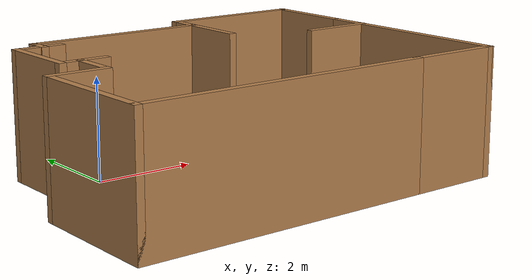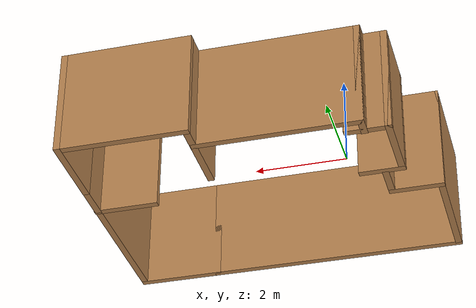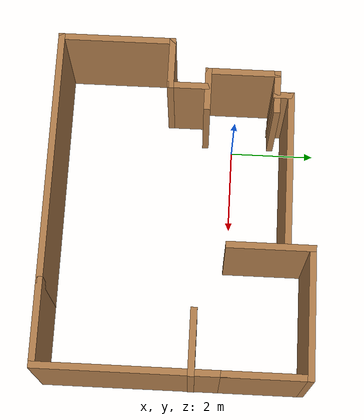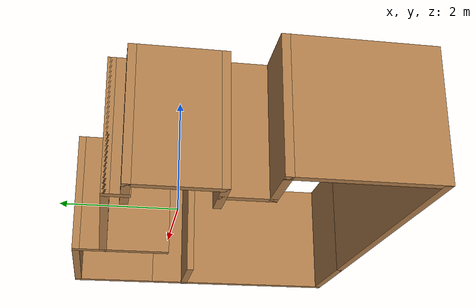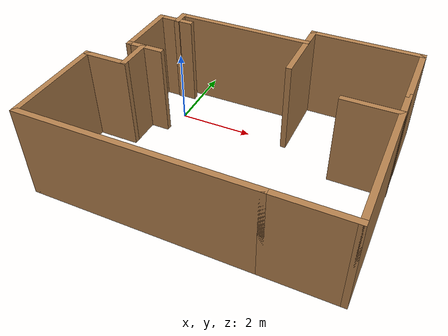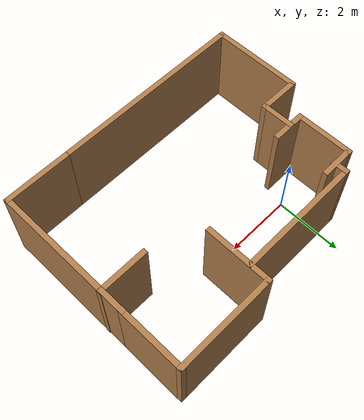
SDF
<?xml version='1.0'?>
<sdf version='1.7'>
  <model name='map'>
    <pose>2.04989 -1.15327 0 0 -0 0</pose>
    <link name='Wall_11'>
      <collision name='Wall_11_Collision'>
        <geometry>
          <box>
            <size>1.03567 0.15 2.5</size>
          </box>
        </geometry>
        <pose>0 0 1.25 0 -0 0</pose>
      </collision>
      <visual name='Wall_11_Visual'>
        <pose>0 0 1.25 0 -0 0</pose>
        <geometry>
          <box>
            <size>1.03567 0.15 2.5</size>
          </box>
        </geometry>
        <material>
          <script>
            <uri>file://media/materials/scripts/gazebo.material</uri>
            <name>Gazebo/Wood</name>
          </script>
          <ambient>1 1 1 1</ambient>
        </material>
        <meta>
          <layer>0</layer>
        </meta>
      </visual>
      <pose>-2.69791 0.49249 0 0 -0 0</pose>
    </link>
    <link name='Wall_15'>
      <collision name='Wall_15_Collision'>
        <geometry>
          <box>
            <size>1 0.15 2.5</size>
          </box>
        </geometry>
        <pose>0 0 1.25 0 -0 0</pose>
      </collision>
      <visual name='Wall_15_Visual'>
        <pose>0 0 1.25 0 -0 0</pose>
        <geometry>
          <box>
            <size>1 0.15 2.5</size>
          </box>
        </geometry>
        <material>
          <script>
            <uri>file://media/materials/scripts/gazebo.material</uri>
            <name>Gazebo/Wood</name>
          </script>
          <ambient>1 1 1 1</ambient>
        </material>
        <meta>
          <layer>0</layer>
        </meta>
      </visual>
      <pose>-2.75562 0.05 0 0 -0 -1.5708</pose>
    </link>
    <link name='Wall_16'>
      <collision name='Wall_16_Collision'>
        <geometry>
          <box>
            <size>1.25 0.15 2.5</size>
          </box>
        </geometry>
        <pose>0 0 1.25 0 -0 0</pose>
      </collision>
      <visual name='Wall_16_Visual'>
        <pose>0 0 1.25 0 -0 0</pose>
        <geometry>
          <box>
            <size>1.25 0.15 2.5</size>
          </box>
        </geometry>
        <material>
          <script>
            <uri>file://media/materials/scripts/gazebo.material</uri>
            <name>Gazebo/Wood</name>
          </script>
          <ambient>1 1 1 1</ambient>
        </material>
        <meta>
          <layer>0</layer>
        </meta>
      </visual>
      <pose>-3.30562 -0.375 0 0 -0 3.14159</pose>
    </link>
    <link name='Wall_17'>
      <collision name='Wall_17_Collision'>
        <geometry>
          <box>
            <size>2.75 0.15 2.5</size>
          </box>
        </geometry>
        <pose>0 0 1.25 0 -0 0</pose>
      </collision>
      <visual name='Wall_17_Visual'>
        <pose>0 0 1.25 0 -0 0</pose>
        <geometry>
          <box>
            <size>2.75 0.15 2.5</size>
          </box>
        </geometry>
        <material>
          <script>
            <uri>file://media/materials/scripts/gazebo.material</uri>
            <name>Gazebo/Wood</name>
          </script>
          <ambient>1 1 1 1</ambient>
        </material>
        <meta>
          <layer>0</layer>
        </meta>
      </visual>
      <pose>-3.85562 -1.675 0 0 -0 -1.5708</pose>
    </link>
    <link name='Wall_18'>
      <collision name='Wall_18_Collision'>
        <geometry>
          <box>
            <size>6 0.15 2.5</size>
          </box>
        </geometry>
        <pose>0 0 1.25 0 -0 0</pose>
      </collision>
      <visual name='Wall_18_Visual'>
        <pose>0 0 1.25 0 -0 0</pose>
        <geometry>
          <box>
            <size>6 0.15 2.5</size>
          </box>
        </geometry>
        <material>
          <script>
            <uri>file://media/materials/scripts/gazebo.material</uri>
            <name>Gazebo/Wood</name>
          </script>
          <ambient>1 1 1 1</ambient>
        </material>
        <meta>
          <layer>0</layer>
        </meta>
      </visual>
      <pose>-0.930622 -2.975 0 0 -0 0</pose>
    </link>
    <link name='Wall_20'>
      <collision name='Wall_20_Collision'>
        <geometry>
          <box>
            <size>2 0.15 2.5</size>
          </box>
        </geometry>
        <pose>0 0 1.25 0 -0 0</pose>
      </collision>
      <visual name='Wall_20_Visual'>
        <pose>0 0 1.25 0 -0 0</pose>
        <geometry>
          <box>
            <size>2 0.15 2.5</size>
          </box>
        </geometry>
        <material>
          <script>
            <uri>file://media/materials/scripts/gazebo.material</uri>
            <name>Gazebo/Wood</name>
          </script>
          <ambient>1 1 1 1</ambient>
        </material>
        <meta>
          <layer>0</layer>
        </meta>
      </visual>
      <pose>2.91938 -2.975 0 0 -0 0</pose>
    </link>
    <link name='Wall_21'>
      <collision name='Wall_21_Collision'>
        <geometry>
          <box>
            <size>4.25 0.15 2.5</size>
          </box>
        </geometry>
        <pose>0 0 1.25 0 -0 0</pose>
      </collision>
      <visual name='Wall_21_Visual'>
        <pose>0 0 1.25 0 -0 0</pose>
        <geometry>
          <box>
            <size>4.25 0.15 2.5</size>
          </box>
        </geometry>
        <material>
          <script>
            <uri>file://media/materials/scripts/gazebo.material</uri>
            <name>Gazebo/Wood</name>
          </script>
          <ambient>1 1 1 1</ambient>
        </material>
        <meta>
          <layer>0</layer>
        </meta>
      </visual>
      <pose>3.84438 -0.925 0 0 -0 1.5708</pose>
    </link>
    <link name='Wall_22'>
      <collision name='Wall_22_Collision'>
        <geometry>
          <box>
            <size>2 0.15 2.5</size>
          </box>
        </geometry>
        <pose>0 0 1.25 0 -0 0</pose>
      </collision>
      <visual name='Wall_22_Visual'>
        <pose>0 0 1.25 0 -0 0</pose>
        <geometry>
          <box>
            <size>2 0.15 2.5</size>
          </box>
        </geometry>
        <material>
          <script>
            <uri>file://media/materials/scripts/gazebo.material</uri>
            <name>Gazebo/Wood</name>
          </script>
          <ambient>1 1 1 1</ambient>
        </material>
        <meta>
          <layer>0</layer>
        </meta>
      </visual>
      <pose>3.84438 2.05 0 0 -0 1.5708</pose>
    </link>
    <link name='Wall_23'>
      <collision name='Wall_23_Collision'>
        <geometry>
          <box>
            <size>3 0.15 2.5</size>
          </box>
        </geometry>
        <pose>0 0 1.25 0 -0 0</pose>
      </collision>
      <visual name='Wall_23_Visual'>
        <pose>0 0 1.25 0 -0 0</pose>
        <geometry>
          <box>
            <size>3 0.15 2.5</size>
          </box>
        </geometry>
        <material>
          <script>
            <uri>file://media/materials/scripts/gazebo.material</uri>
            <name>Gazebo/Wood</name>
          </script>
          <ambient>1 1 1 1</ambient>
        </material>
        <meta>
          <layer>0</layer>
        </meta>
      </visual>
      <pose>2.41938 2.975 0 0 -0 3.14159</pose>
    </link>
    <link name='Wall_24'>
      <collision name='Wall_24_Collision'>
        <geometry>
          <box>
            <size>2 0.15 2.5</size>
          </box>
        </geometry>
        <pose>0 0 1.25 0 -0 0</pose>
      </collision>
      <visual name='Wall_24_Visual'>
        <pose>0 0 1.25 0 -0 0</pose>
        <geometry>
          <box>
            <size>2 0.15 2.5</size>
          </box>
        </geometry>
        <material>
          <script>
            <uri>file://media/materials/scripts/gazebo.material</uri>
            <name>Gazebo/Wood</name>
          </script>
          <ambient>1 1 1 1</ambient>
        </material>
        <meta>
          <layer>0</layer>
        </meta>
      </visual>
      <pose>0.994378 2.05 0 0 -0 -1.5708</pose>
    </link>
    <link name='Wall_26'>
      <collision name='Wall_26_Collision'>
        <geometry>
          <box>
            <size>0.5 0.15 2.5</size>
          </box>
        </geometry>
        <pose>0 0 1.25 0 -0 0</pose>
      </collision>
      <visual name='Wall_26_Visual'>
        <pose>0 0 1.25 0 -0 0</pose>
        <geometry>
          <box>
            <size>0.5 0.15 2.5</size>
          </box>
        </geometry>
        <material>
          <script>
            <uri>file://media/materials/scripts/gazebo.material</uri>
            <name>Gazebo/Wood</name>
          </script>
          <ambient>1 1 1 1</ambient>
        </material>
        <meta>
          <layer>0</layer>
        </meta>
      </visual>
      <pose>-2.6157 2.2416 0 0 -0 1.5708</pose>
    </link>
    <link name='Wall_27'>
      <collision name='Wall_27_Collision'>
        <geometry>
          <box>
            <size>3.75 0.15 2.5</size>
          </box>
        </geometry>
        <pose>0 0 1.25 0 -0 0</pose>
      </collision>
      <visual name='Wall_27_Visual'>
        <pose>0 0 1.25 0 -0 0</pose>
        <geometry>
          <box>
            <size>3.75 0.15 2.5</size>
          </box>
        </geometry>
        <material>
          <script>
            <uri>file://media/materials/scripts/gazebo.material</uri>
            <name>Gazebo/Wood</name>
          </script>
          <ambient>1 1 1 1</ambient>
        </material>
        <meta>
          <layer>0</layer>
        </meta>
      </visual>
      <pose>-0.815701 2.4166 0 0 -0 0</pose>
    </link>
    <link name='Wall_30'>
      <collision name='Wall_30_Collision'>
        <geometry>
          <box>
            <size>1.5 0.15 2.5</size>
          </box>
        </geometry>
        <pose>0 0 1.25 0 -0 0</pose>
      </collision>
      <visual name='Wall_30_Visual'>
        <pose>0 0 1.25 0 -0 0</pose>
        <geometry>
          <box>
            <size>1.5 0.15 2.5</size>
          </box>
        </geometry>
        <material>
          <script>
            <uri>file://media/materials/scripts/gazebo.material</uri>
            <name>Gazebo/Wood</name>
          </script>
          <ambient>1 1 1 1</ambient>
        </material>
        <meta>
          <layer>0</layer>
        </meta>
      </visual>
      <pose>3.18062 0.42253 0 0 -0 3.14159</pose>
    </link>
    <link name='Wall_7'>
      <collision name='Wall_7_Collision'>
        <geometry>
          <box>
            <size>1.75 0.15 2.5</size>
          </box>
        </geometry>
        <pose>0 0 1.25 0 -0 0</pose>
      </collision>
      <visual name='Wall_7_Visual'>
        <pose>0 0 1.25 0 -0 0</pose>
        <geometry>
          <box>
            <size>1.75 0.15 2.5</size>
          </box>
        </geometry>
        <material>
          <script>
            <uri>file://media/materials/scripts/gazebo.material</uri>
            <name>Gazebo/Wood</name>
          </script>
          <ambient>1 1 1 1</ambient>
        </material>
        <meta>
          <layer>0</layer>
        </meta>
      </visual>
      <pose>-3.1404 1.29249 0 0 -0 1.5708</pose>
    </link>
    <link name='Wall_9'>
      <collision name='Wall_9_Collision'>
        <geometry>
          <box>
            <size>1.03567 0.15 2.5</size>
          </box>
        </geometry>
        <pose>0 0 1.25 0 -0 0</pose>
      </collision>
      <visual name='Wall_9_Visual'>
        <pose>0 0 1.25 0 -0 0</pose>
        <geometry>
          <box>
            <size>1.03567 0.15 2.5</size>
          </box>
        </geometry>
        <material>
          <script>
            <uri>file://media/materials/scripts/gazebo.material</uri>
            <name>Gazebo/Wood</name>
          </script>
          <ambient>1 1 1 1</ambient>
        </material>
        <meta>
          <layer>0</layer>
        </meta>
      </visual>
      <pose>-2.69791 2.09249 0 0 -0 0</pose>
    </link>
    <static>1</static>
  </model>
</sdf>
